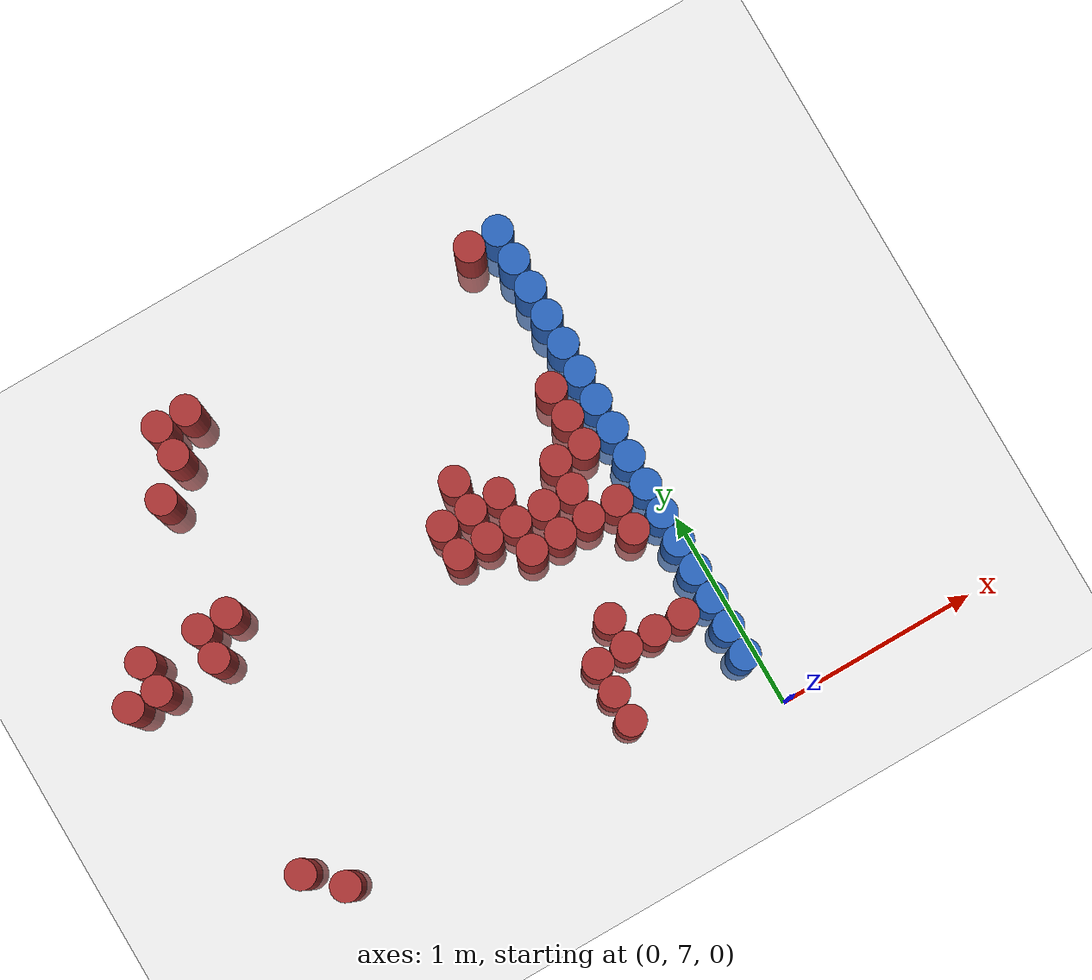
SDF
<sdf version="1.6">
 <world name="default">
  <model name="ground_plane">
   <static>1</static>
   <link name="link">
    <collision name="collision">
     <geometry><plane><normal>0 0 1</normal><size>100 100</size></plane></geometry>
     <surface><friction><ode><mu>100</mu><mu2>50</mu2></ode></friction></surface>
    </collision>
    <visual name="visual">
     <cast_shadows>0</cast_shadows>
     <geometry><plane><normal>0 0 1</normal><size>100 100</size></plane></geometry>
     <material>
      <script><uri>file://media/materials/scripts/gazebo.material</uri><name>Gazebo/Grey</name></script>
     </material>
    </visual>
   </link>
  </model>
  <model name="unit_cylinder_166">
   <static>1</static>
   <pose>-2.625000 8.475000 0.000000 0.000000 0.000000 0.000000</pose>
   <link name="link">
    <inertial>
     <mass>1</mass>
     <inertia><ixx>0.145833</ixx><ixy>0</ixy><ixz>0</ixz><iyy>0.145833</iyy><iyz>0</iyz><izz>0.125</izz></inertia>
    </inertial>
    <collision name="collision">
     <geometry><cylinder><radius>0.075000</radius><length>1</length></cylinder></geometry>
    </collision>
    <visual name="visual">
     <geometry><cylinder><radius>0.075000</radius><length>1</length></cylinder></geometry>
     <material>
      <ambient>0.648000 0.192000 0.192000 1</ambient>
      <diffuse>0.648000 0.192000 0.192000 1</diffuse>
     </material>
     <material>
      <script><name>Gazebo/Grey</name><uri>file://media/materials/scripts/gazebo.material</uri></script>
     </material>
    </visual>
   </link>
  </model>
  <model name="unit_cylinder_171">
   <static>1</static>
   <pose>-2.475000 8.475000 0.000000 0.000000 0.000000 0.000000</pose>
   <link name="link">
    <inertial>
     <mass>1</mass>
     <inertia><ixx>0.145833</ixx><ixy>0</ixy><ixz>0</ixz><iyy>0.145833</iyy><iyz>0</iyz><izz>0.125</izz></inertia>
    </inertial>
    <collision name="collision">
     <geometry><cylinder><radius>0.075000</radius><length>1</length></cylinder></geometry>
    </collision>
    <visual name="visual">
     <geometry><cylinder><radius>0.075000</radius><length>1</length></cylinder></geometry>
     <material>
      <ambient>0.648000 0.192000 0.192000 1</ambient>
      <diffuse>0.648000 0.192000 0.192000 1</diffuse>
     </material>
     <material>
      <script><name>Gazebo/Grey</name><uri>file://media/materials/scripts/gazebo.material</uri></script>
     </material>
    </visual>
   </link>
  </model>
  <model name="unit_cylinder_172">
   <static>1</static>
   <pose>-2.475000 8.625000 0.000000 0.000000 0.000000 0.000000</pose>
   <link name="link">
    <inertial>
     <mass>1</mass>
     <inertia><ixx>0.145833</ixx><ixy>0</ixy><ixz>0</ixz><iyy>0.145833</iyy><iyz>0</iyz><izz>0.125</izz></inertia>
    </inertial>
    <collision name="collision">
     <geometry><cylinder><radius>0.075000</radius><length>1</length></cylinder></geometry>
    </collision>
    <visual name="visual">
     <geometry><cylinder><radius>0.075000</radius><length>1</length></cylinder></geometry>
     <material>
      <ambient>0.648000 0.192000 0.192000 1</ambient>
      <diffuse>0.648000 0.192000 0.192000 1</diffuse>
     </material>
     <material>
      <script><name>Gazebo/Grey</name><uri>file://media/materials/scripts/gazebo.material</uri></script>
     </material>
    </visual>
   </link>
  </model>
  <model name="unit_cylinder_175">
   <static>1</static>
   <pose>-2.325000 7.425000 0.000000 0.000000 0.000000 0.000000</pose>
   <link name="link">
    <inertial>
     <mass>1</mass>
     <inertia><ixx>0.145833</ixx><ixy>0</ixy><ixz>0</ixz><iyy>0.145833</iyy><iyz>0</iyz><izz>0.125</izz></inertia>
    </inertial>
    <collision name="collision">
     <geometry><cylinder><radius>0.075000</radius><length>1</length></cylinder></geometry>
    </collision>
    <visual name="visual">
     <geometry><cylinder><radius>0.075000</radius><length>1</length></cylinder></geometry>
     <material>
      <ambient>0.648000 0.192000 0.192000 1</ambient>
      <diffuse>0.648000 0.192000 0.192000 1</diffuse>
     </material>
     <material>
      <script><name>Gazebo/Grey</name><uri>file://media/materials/scripts/gazebo.material</uri></script>
     </material>
    </visual>
   </link>
  </model>
  <model name="unit_cylinder_180">
   <static>1</static>
   <pose>-2.175000 7.275000 0.000000 0.000000 0.000000 0.000000</pose>
   <link name="link">
    <inertial>
     <mass>1</mass>
     <inertia><ixx>0.145833</ixx><ixy>0</ixy><ixz>0</ixz><iyy>0.145833</iyy><iyz>0</iyz><izz>0.125</izz></inertia>
    </inertial>
    <collision name="collision">
     <geometry><cylinder><radius>0.075000</radius><length>1</length></cylinder></geometry>
    </collision>
    <visual name="visual">
     <geometry><cylinder><radius>0.075000</radius><length>1</length></cylinder></geometry>
     <material>
      <ambient>0.648000 0.192000 0.192000 1</ambient>
      <diffuse>0.648000 0.192000 0.192000 1</diffuse>
     </material>
     <material>
      <script><name>Gazebo/Grey</name><uri>file://media/materials/scripts/gazebo.material</uri></script>
     </material>
    </visual>
   </link>
  </model>
  <model name="unit_cylinder_181">
   <static>1</static>
   <pose>-2.175000 8.475000 0.000000 0.000000 0.000000 0.000000</pose>
   <link name="link">
    <inertial>
     <mass>1</mass>
     <inertia><ixx>0.145833</ixx><ixy>0</ixy><ixz>0</ixz><iyy>0.145833</iyy><iyz>0</iyz><izz>0.125</izz></inertia>
    </inertial>
    <collision name="collision">
     <geometry><cylinder><radius>0.075000</radius><length>1</length></cylinder></geometry>
    </collision>
    <visual name="visual">
     <geometry><cylinder><radius>0.075000</radius><length>1</length></cylinder></geometry>
     <material>
      <ambient>0.648000 0.192000 0.192000 1</ambient>
      <diffuse>0.648000 0.192000 0.192000 1</diffuse>
     </material>
     <material>
      <script><name>Gazebo/Grey</name><uri>file://media/materials/scripts/gazebo.material</uri></script>
     </material>
    </visual>
   </link>
  </model>
  <model name="unit_cylinder_182">
   <static>1</static>
   <pose>-2.175000 8.625000 0.000000 0.000000 0.000000 0.000000</pose>
   <link name="link">
    <inertial>
     <mass>1</mass>
     <inertia><ixx>0.145833</ixx><ixy>0</ixy><ixz>0</ixz><iyy>0.145833</iyy><iyz>0</iyz><izz>0.125</izz></inertia>
    </inertial>
    <collision name="collision">
     <geometry><cylinder><radius>0.075000</radius><length>1</length></cylinder></geometry>
    </collision>
    <visual name="visual">
     <geometry><cylinder><radius>0.075000</radius><length>1</length></cylinder></geometry>
     <material>
      <ambient>0.648000 0.192000 0.192000 1</ambient>
      <diffuse>0.648000 0.192000 0.192000 1</diffuse>
     </material>
     <material>
      <script><name>Gazebo/Grey</name><uri>file://media/materials/scripts/gazebo.material</uri></script>
     </material>
    </visual>
   </link>
  </model>
  <model name="unit_cylinder_184">
   <static>1</static>
   <pose>-2.025000 8.625000 0.000000 0.000000 0.000000 0.000000</pose>
   <link name="link">
    <inertial>
     <mass>1</mass>
     <inertia><ixx>0.145833</ixx><ixy>0</ixy><ixz>0</ixz><iyy>0.145833</iyy><iyz>0</iyz><izz>0.125</izz></inertia>
    </inertial>
    <collision name="collision">
     <geometry><cylinder><radius>0.075000</radius><length>1</length></cylinder></geometry>
    </collision>
    <visual name="visual">
     <geometry><cylinder><radius>0.075000</radius><length>1</length></cylinder></geometry>
     <material>
      <ambient>0.648000 0.192000 0.192000 1</ambient>
      <diffuse>0.648000 0.192000 0.192000 1</diffuse>
     </material>
     <material>
      <script><name>Gazebo/Grey</name><uri>file://media/materials/scripts/gazebo.material</uri></script>
     </material>
    </visual>
   </link>
  </model>
  <model name="unit_cylinder_185">
   <static>1</static>
   <pose>-2.025000 9.225000 0.000000 0.000000 0.000000 0.000000</pose>
   <link name="link">
    <inertial>
     <mass>1</mass>
     <inertia><ixx>0.145833</ixx><ixy>0</ixy><ixz>0</ixz><iyy>0.145833</iyy><iyz>0</iyz><izz>0.125</izz></inertia>
    </inertial>
    <collision name="collision">
     <geometry><cylinder><radius>0.075000</radius><length>1</length></cylinder></geometry>
    </collision>
    <visual name="visual">
     <geometry><cylinder><radius>0.075000</radius><length>1</length></cylinder></geometry>
     <material>
      <ambient>0.648000 0.192000 0.192000 1</ambient>
      <diffuse>0.648000 0.192000 0.192000 1</diffuse>
     </material>
     <material>
      <script><name>Gazebo/Grey</name><uri>file://media/materials/scripts/gazebo.material</uri></script>
     </material>
    </visual>
   </link>
  </model>
  <model name="unit_cylinder_186">
   <static>1</static>
   <pose>-1.875000 9.375000 0.000000 0.000000 0.000000 0.000000</pose>
   <link name="link">
    <inertial>
     <mass>1</mass>
     <inertia><ixx>0.145833</ixx><ixy>0</ixy><ixz>0</ixz><iyy>0.145833</iyy><iyz>0</iyz><izz>0.125</izz></inertia>
    </inertial>
    <collision name="collision">
     <geometry><cylinder><radius>0.075000</radius><length>1</length></cylinder></geometry>
    </collision>
    <visual name="visual">
     <geometry><cylinder><radius>0.075000</radius><length>1</length></cylinder></geometry>
     <material>
      <ambient>0.648000 0.192000 0.192000 1</ambient>
      <diffuse>0.648000 0.192000 0.192000 1</diffuse>
     </material>
     <material>
      <script><name>Gazebo/Grey</name><uri>file://media/materials/scripts/gazebo.material</uri></script>
     </material>
    </visual>
   </link>
  </model>
  <model name="unit_cylinder_187">
   <static>1</static>
   <pose>-1.875000 9.525000 0.000000 0.000000 0.000000 0.000000</pose>
   <link name="link">
    <inertial>
     <mass>1</mass>
     <inertia><ixx>0.145833</ixx><ixy>0</ixy><ixz>0</ixz><iyy>0.145833</iyy><iyz>0</iyz><izz>0.125</izz></inertia>
    </inertial>
    <collision name="collision">
     <geometry><cylinder><radius>0.075000</radius><length>1</length></cylinder></geometry>
    </collision>
    <visual name="visual">
     <geometry><cylinder><radius>0.075000</radius><length>1</length></cylinder></geometry>
     <material>
      <ambient>0.648000 0.192000 0.192000 1</ambient>
      <diffuse>0.648000 0.192000 0.192000 1</diffuse>
     </material>
     <material>
      <script><name>Gazebo/Grey</name><uri>file://media/materials/scripts/gazebo.material</uri></script>
     </material>
    </visual>
   </link>
  </model>
  <model name="unit_cylinder_188">
   <static>1</static>
   <pose>-1.725000 9.525000 0.000000 0.000000 0.000000 0.000000</pose>
   <link name="link">
    <inertial>
     <mass>1</mass>
     <inertia><ixx>0.145833</ixx><ixy>0</ixy><ixz>0</ixz><iyy>0.145833</iyy><iyz>0</iyz><izz>0.125</izz></inertia>
    </inertial>
    <collision name="collision">
     <geometry><cylinder><radius>0.075000</radius><length>1</length></cylinder></geometry>
    </collision>
    <visual name="visual">
     <geometry><cylinder><radius>0.075000</radius><length>1</length></cylinder></geometry>
     <material>
      <ambient>0.648000 0.192000 0.192000 1</ambient>
      <diffuse>0.648000 0.192000 0.192000 1</diffuse>
     </material>
     <material>
      <script><name>Gazebo/Grey</name><uri>file://media/materials/scripts/gazebo.material</uri></script>
     </material>
    </visual>
   </link>
  </model>
  <model name="unit_cylinder_199">
   <static>1</static>
   <pose>-0.975000 8.325000 0.000000 0.000000 0.000000 0.000000</pose>
   <link name="link">
    <inertial>
     <mass>1</mass>
     <inertia><ixx>0.145833</ixx><ixy>0</ixy><ixz>0</ixz><iyy>0.145833</iyy><iyz>0</iyz><izz>0.125</izz></inertia>
    </inertial>
    <collision name="collision">
     <geometry><cylinder><radius>0.075000</radius><length>1</length></cylinder></geometry>
    </collision>
    <visual name="visual">
     <geometry><cylinder><radius>0.075000</radius><length>1</length></cylinder></geometry>
     <material>
      <ambient>0.648000 0.192000 0.192000 1</ambient>
      <diffuse>0.648000 0.192000 0.192000 1</diffuse>
     </material>
     <material>
      <script><name>Gazebo/Grey</name><uri>file://media/materials/scripts/gazebo.material</uri></script>
     </material>
    </visual>
   </link>
  </model>
  <model name="unit_cylinder_200">
   <static>1</static>
   <pose>-0.975000 8.475000 0.000000 0.000000 0.000000 0.000000</pose>
   <link name="link">
    <inertial>
     <mass>1</mass>
     <inertia><ixx>0.145833</ixx><ixy>0</ixy><ixz>0</ixz><iyy>0.145833</iyy><iyz>0</iyz><izz>0.125</izz></inertia>
    </inertial>
    <collision name="collision">
     <geometry><cylinder><radius>0.075000</radius><length>1</length></cylinder></geometry>
    </collision>
    <visual name="visual">
     <geometry><cylinder><radius>0.075000</radius><length>1</length></cylinder></geometry>
     <material>
      <ambient>0.648000 0.192000 0.192000 1</ambient>
      <diffuse>0.648000 0.192000 0.192000 1</diffuse>
     </material>
     <material>
      <script><name>Gazebo/Grey</name><uri>file://media/materials/scripts/gazebo.material</uri></script>
     </material>
    </visual>
   </link>
  </model>
  <model name="unit_cylinder_203">
   <static>1</static>
   <pose>-0.825000 8.325000 0.000000 0.000000 0.000000 0.000000</pose>
   <link name="link">
    <inertial>
     <mass>1</mass>
     <inertia><ixx>0.145833</ixx><ixy>0</ixy><ixz>0</ixz><iyy>0.145833</iyy><iyz>0</iyz><izz>0.125</izz></inertia>
    </inertial>
    <collision name="collision">
     <geometry><cylinder><radius>0.075000</radius><length>1</length></cylinder></geometry>
    </collision>
    <visual name="visual">
     <geometry><cylinder><radius>0.075000</radius><length>1</length></cylinder></geometry>
     <material>
      <ambient>0.648000 0.192000 0.192000 1</ambient>
      <diffuse>0.648000 0.192000 0.192000 1</diffuse>
     </material>
     <material>
      <script><name>Gazebo/Grey</name><uri>file://media/materials/scripts/gazebo.material</uri></script>
     </material>
    </visual>
   </link>
  </model>
  <model name="unit_cylinder_204">
   <static>1</static>
   <pose>-0.825000 8.475000 0.000000 0.000000 0.000000 0.000000</pose>
   <link name="link">
    <inertial>
     <mass>1</mass>
     <inertia><ixx>0.145833</ixx><ixy>0</ixy><ixz>0</ixz><iyy>0.145833</iyy><iyz>0</iyz><izz>0.125</izz></inertia>
    </inertial>
    <collision name="collision">
     <geometry><cylinder><radius>0.075000</radius><length>1</length></cylinder></geometry>
    </collision>
    <visual name="visual">
     <geometry><cylinder><radius>0.075000</radius><length>1</length></cylinder></geometry>
     <material>
      <ambient>0.648000 0.192000 0.192000 1</ambient>
      <diffuse>0.648000 0.192000 0.192000 1</diffuse>
     </material>
     <material>
      <script><name>Gazebo/Grey</name><uri>file://media/materials/scripts/gazebo.material</uri></script>
     </material>
    </visual>
   </link>
  </model>
  <model name="unit_cylinder_205">
   <static>1</static>
   <pose>-0.825000 8.625000 0.000000 0.000000 0.000000 0.000000</pose>
   <link name="link">
    <inertial>
     <mass>1</mass>
     <inertia><ixx>0.145833</ixx><ixy>0</ixy><ixz>0</ixz><iyy>0.145833</iyy><iyz>0</iyz><izz>0.125</izz></inertia>
    </inertial>
    <collision name="collision">
     <geometry><cylinder><radius>0.075000</radius><length>1</length></cylinder></geometry>
    </collision>
    <visual name="visual">
     <geometry><cylinder><radius>0.075000</radius><length>1</length></cylinder></geometry>
     <material>
      <ambient>0.648000 0.192000 0.192000 1</ambient>
      <diffuse>0.648000 0.192000 0.192000 1</diffuse>
     </material>
     <material>
      <script><name>Gazebo/Grey</name><uri>file://media/materials/scripts/gazebo.material</uri></script>
     </material>
    </visual>
   </link>
  </model>
  <model name="unit_cylinder_207">
   <static>1</static>
   <pose>-0.675000 7.275000 0.000000 0.000000 0.000000 0.000000</pose>
   <link name="link">
    <inertial>
     <mass>1</mass>
     <inertia><ixx>0.145833</ixx><ixy>0</ixy><ixz>0</ixz><iyy>0.145833</iyy><iyz>0</iyz><izz>0.125</izz></inertia>
    </inertial>
    <collision name="collision">
     <geometry><cylinder><radius>0.075000</radius><length>1</length></cylinder></geometry>
    </collision>
    <visual name="visual">
     <geometry><cylinder><radius>0.075000</radius><length>1</length></cylinder></geometry>
     <material>
      <ambient>0.648000 0.192000 0.192000 1</ambient>
      <diffuse>0.648000 0.192000 0.192000 1</diffuse>
     </material>
     <material>
      <script><name>Gazebo/Grey</name><uri>file://media/materials/scripts/gazebo.material</uri></script>
     </material>
    </visual>
   </link>
  </model>
  <model name="unit_cylinder_208">
   <static>1</static>
   <pose>-0.675000 7.425000 0.000000 0.000000 0.000000 0.000000</pose>
   <link name="link">
    <inertial>
     <mass>1</mass>
     <inertia><ixx>0.145833</ixx><ixy>0</ixy><ixz>0</ixz><iyy>0.145833</iyy><iyz>0</iyz><izz>0.125</izz></inertia>
    </inertial>
    <collision name="collision">
     <geometry><cylinder><radius>0.075000</radius><length>1</length></cylinder></geometry>
    </collision>
    <visual name="visual">
     <geometry><cylinder><radius>0.075000</radius><length>1</length></cylinder></geometry>
     <material>
      <ambient>0.648000 0.192000 0.192000 1</ambient>
      <diffuse>0.648000 0.192000 0.192000 1</diffuse>
     </material>
     <material>
      <script><name>Gazebo/Grey</name><uri>file://media/materials/scripts/gazebo.material</uri></script>
     </material>
    </visual>
   </link>
  </model>
  <model name="unit_cylinder_209">
   <static>1</static>
   <pose>-0.675000 7.575000 0.000000 0.000000 0.000000 0.000000</pose>
   <link name="link">
    <inertial>
     <mass>1</mass>
     <inertia><ixx>0.145833</ixx><ixy>0</ixy><ixz>0</ixz><iyy>0.145833</iyy><iyz>0</iyz><izz>0.125</izz></inertia>
    </inertial>
    <collision name="collision">
     <geometry><cylinder><radius>0.075000</radius><length>1</length></cylinder></geometry>
    </collision>
    <visual name="visual">
     <geometry><cylinder><radius>0.075000</radius><length>1</length></cylinder></geometry>
     <material>
      <ambient>0.648000 0.192000 0.192000 1</ambient>
      <diffuse>0.648000 0.192000 0.192000 1</diffuse>
     </material>
     <material>
      <script><name>Gazebo/Grey</name><uri>file://media/materials/scripts/gazebo.material</uri></script>
     </material>
    </visual>
   </link>
  </model>
  <model name="unit_cylinder_210">
   <static>1</static>
   <pose>-0.675000 8.175000 0.000000 0.000000 0.000000 0.000000</pose>
   <link name="link">
    <inertial>
     <mass>1</mass>
     <inertia><ixx>0.145833</ixx><ixy>0</ixy><ixz>0</ixz><iyy>0.145833</iyy><iyz>0</iyz><izz>0.125</izz></inertia>
    </inertial>
    <collision name="collision">
     <geometry><cylinder><radius>0.075000</radius><length>1</length></cylinder></geometry>
    </collision>
    <visual name="visual">
     <geometry><cylinder><radius>0.075000</radius><length>1</length></cylinder></geometry>
     <material>
      <ambient>0.648000 0.192000 0.192000 1</ambient>
      <diffuse>0.648000 0.192000 0.192000 1</diffuse>
     </material>
     <material>
      <script><name>Gazebo/Grey</name><uri>file://media/materials/scripts/gazebo.material</uri></script>
     </material>
    </visual>
   </link>
  </model>
  <model name="unit_cylinder_211">
   <static>1</static>
   <pose>-0.675000 8.325000 0.000000 0.000000 0.000000 0.000000</pose>
   <link name="link">
    <inertial>
     <mass>1</mass>
     <inertia><ixx>0.145833</ixx><ixy>0</ixy><ixz>0</ixz><iyy>0.145833</iyy><iyz>0</iyz><izz>0.125</izz></inertia>
    </inertial>
    <collision name="collision">
     <geometry><cylinder><radius>0.075000</radius><length>1</length></cylinder></geometry>
    </collision>
    <visual name="visual">
     <geometry><cylinder><radius>0.075000</radius><length>1</length></cylinder></geometry>
     <material>
      <ambient>0.648000 0.192000 0.192000 1</ambient>
      <diffuse>0.648000 0.192000 0.192000 1</diffuse>
     </material>
     <material>
      <script><name>Gazebo/Grey</name><uri>file://media/materials/scripts/gazebo.material</uri></script>
     </material>
    </visual>
   </link>
  </model>
  <model name="unit_cylinder_212">
   <static>1</static>
   <pose>-0.675000 8.475000 0.000000 0.000000 0.000000 0.000000</pose>
   <link name="link">
    <inertial>
     <mass>1</mass>
     <inertia><ixx>0.145833</ixx><ixy>0</ixy><ixz>0</ixz><iyy>0.145833</iyy><iyz>0</iyz><izz>0.125</izz></inertia>
    </inertial>
    <collision name="collision">
     <geometry><cylinder><radius>0.075000</radius><length>1</length></cylinder></geometry>
    </collision>
    <visual name="visual">
     <geometry><cylinder><radius>0.075000</radius><length>1</length></cylinder></geometry>
     <material>
      <ambient>0.648000 0.192000 0.192000 1</ambient>
      <diffuse>0.648000 0.192000 0.192000 1</diffuse>
     </material>
     <material>
      <script><name>Gazebo/Grey</name><uri>file://media/materials/scripts/gazebo.material</uri></script>
     </material>
    </visual>
   </link>
  </model>
  <model name="unit_cylinder_215">
   <static>1</static>
   <pose>-0.525000 7.575000 0.000000 0.000000 0.000000 0.000000</pose>
   <link name="link">
    <inertial>
     <mass>1</mass>
     <inertia><ixx>0.145833</ixx><ixy>0</ixy><ixz>0</ixz><iyy>0.145833</iyy><iyz>0</iyz><izz>0.125</izz></inertia>
    </inertial>
    <collision name="collision">
     <geometry><cylinder><radius>0.075000</radius><length>1</length></cylinder></geometry>
    </collision>
    <visual name="visual">
     <geometry><cylinder><radius>0.075000</radius><length>1</length></cylinder></geometry>
     <material>
      <ambient>0.648000 0.192000 0.192000 1</ambient>
      <diffuse>0.648000 0.192000 0.192000 1</diffuse>
     </material>
     <material>
      <script><name>Gazebo/Grey</name><uri>file://media/materials/scripts/gazebo.material</uri></script>
     </material>
    </visual>
   </link>
  </model>
  <model name="unit_cylinder_216">
   <static>1</static>
   <pose>-0.525000 7.725000 0.000000 0.000000 0.000000 0.000000</pose>
   <link name="link">
    <inertial>
     <mass>1</mass>
     <inertia><ixx>0.145833</ixx><ixy>0</ixy><ixz>0</ixz><iyy>0.145833</iyy><iyz>0</iyz><izz>0.125</izz></inertia>
    </inertial>
    <collision name="collision">
     <geometry><cylinder><radius>0.075000</radius><length>1</length></cylinder></geometry>
    </collision>
    <visual name="visual">
     <geometry><cylinder><radius>0.075000</radius><length>1</length></cylinder></geometry>
     <material>
      <ambient>0.648000 0.192000 0.192000 1</ambient>
      <diffuse>0.648000 0.192000 0.192000 1</diffuse>
     </material>
     <material>
      <script><name>Gazebo/Grey</name><uri>file://media/materials/scripts/gazebo.material</uri></script>
     </material>
    </visual>
   </link>
  </model>
  <model name="unit_cylinder_217">
   <static>1</static>
   <pose>-0.525000 8.175000 0.000000 0.000000 0.000000 0.000000</pose>
   <link name="link">
    <inertial>
     <mass>1</mass>
     <inertia><ixx>0.145833</ixx><ixy>0</ixy><ixz>0</ixz><iyy>0.145833</iyy><iyz>0</iyz><izz>0.125</izz></inertia>
    </inertial>
    <collision name="collision">
     <geometry><cylinder><radius>0.075000</radius><length>1</length></cylinder></geometry>
    </collision>
    <visual name="visual">
     <geometry><cylinder><radius>0.075000</radius><length>1</length></cylinder></geometry>
     <material>
      <ambient>0.648000 0.192000 0.192000 1</ambient>
      <diffuse>0.648000 0.192000 0.192000 1</diffuse>
     </material>
     <material>
      <script><name>Gazebo/Grey</name><uri>file://media/materials/scripts/gazebo.material</uri></script>
     </material>
    </visual>
   </link>
  </model>
  <model name="unit_cylinder_218">
   <static>1</static>
   <pose>-0.525000 8.325000 0.000000 0.000000 0.000000 0.000000</pose>
   <link name="link">
    <inertial>
     <mass>1</mass>
     <inertia><ixx>0.145833</ixx><ixy>0</ixy><ixz>0</ixz><iyy>0.145833</iyy><iyz>0</iyz><izz>0.125</izz></inertia>
    </inertial>
    <collision name="collision">
     <geometry><cylinder><radius>0.075000</radius><length>1</length></cylinder></geometry>
    </collision>
    <visual name="visual">
     <geometry><cylinder><radius>0.075000</radius><length>1</length></cylinder></geometry>
     <material>
      <ambient>0.648000 0.192000 0.192000 1</ambient>
      <diffuse>0.648000 0.192000 0.192000 1</diffuse>
     </material>
     <material>
      <script><name>Gazebo/Grey</name><uri>file://media/materials/scripts/gazebo.material</uri></script>
     </material>
    </visual>
   </link>
  </model>
  <model name="unit_cylinder_222">
   <static>1</static>
   <pose>-0.375000 7.575000 0.000000 0.000000 0.000000 0.000000</pose>
   <link name="link">
    <inertial>
     <mass>1</mass>
     <inertia><ixx>0.145833</ixx><ixy>0</ixy><ixz>0</ixz><iyy>0.145833</iyy><iyz>0</iyz><izz>0.125</izz></inertia>
    </inertial>
    <collision name="collision">
     <geometry><cylinder><radius>0.075000</radius><length>1</length></cylinder></geometry>
    </collision>
    <visual name="visual">
     <geometry><cylinder><radius>0.075000</radius><length>1</length></cylinder></geometry>
     <material>
      <ambient>0.648000 0.192000 0.192000 1</ambient>
      <diffuse>0.648000 0.192000 0.192000 1</diffuse>
     </material>
     <material>
      <script><name>Gazebo/Grey</name><uri>file://media/materials/scripts/gazebo.material</uri></script>
     </material>
    </visual>
   </link>
  </model>
  <model name="unit_cylinder_223">
   <static>1</static>
   <pose>-0.375000 8.175000 0.000000 0.000000 0.000000 0.000000</pose>
   <link name="link">
    <inertial>
     <mass>1</mass>
     <inertia><ixx>0.145833</ixx><ixy>0</ixy><ixz>0</ixz><iyy>0.145833</iyy><iyz>0</iyz><izz>0.125</izz></inertia>
    </inertial>
    <collision name="collision">
     <geometry><cylinder><radius>0.075000</radius><length>1</length></cylinder></geometry>
    </collision>
    <visual name="visual">
     <geometry><cylinder><radius>0.075000</radius><length>1</length></cylinder></geometry>
     <material>
      <ambient>0.648000 0.192000 0.192000 1</ambient>
      <diffuse>0.648000 0.192000 0.192000 1</diffuse>
     </material>
     <material>
      <script><name>Gazebo/Grey</name><uri>file://media/materials/scripts/gazebo.material</uri></script>
     </material>
    </visual>
   </link>
  </model>
  <model name="unit_cylinder_224">
   <static>1</static>
   <pose>-0.375000 8.325000 0.000000 0.000000 0.000000 0.000000</pose>
   <link name="link">
    <inertial>
     <mass>1</mass>
     <inertia><ixx>0.145833</ixx><ixy>0</ixy><ixz>0</ixz><iyy>0.145833</iyy><iyz>0</iyz><izz>0.125</izz></inertia>
    </inertial>
    <collision name="collision">
     <geometry><cylinder><radius>0.075000</radius><length>1</length></cylinder></geometry>
    </collision>
    <visual name="visual">
     <geometry><cylinder><radius>0.075000</radius><length>1</length></cylinder></geometry>
     <material>
      <ambient>0.648000 0.192000 0.192000 1</ambient>
      <diffuse>0.648000 0.192000 0.192000 1</diffuse>
     </material>
     <material>
      <script><name>Gazebo/Grey</name><uri>file://media/materials/scripts/gazebo.material</uri></script>
     </material>
    </visual>
   </link>
  </model>
  <model name="unit_cylinder_225">
   <static>1</static>
   <pose>-0.375000 8.475000 0.000000 0.000000 0.000000 0.000000</pose>
   <link name="link">
    <inertial>
     <mass>1</mass>
     <inertia><ixx>0.145833</ixx><ixy>0</ixy><ixz>0</ixz><iyy>0.145833</iyy><iyz>0</iyz><izz>0.125</izz></inertia>
    </inertial>
    <collision name="collision">
     <geometry><cylinder><radius>0.075000</radius><length>1</length></cylinder></geometry>
    </collision>
    <visual name="visual">
     <geometry><cylinder><radius>0.075000</radius><length>1</length></cylinder></geometry>
     <material>
      <ambient>0.648000 0.192000 0.192000 1</ambient>
      <diffuse>0.648000 0.192000 0.192000 1</diffuse>
     </material>
     <material>
      <script><name>Gazebo/Grey</name><uri>file://media/materials/scripts/gazebo.material</uri></script>
     </material>
    </visual>
   </link>
  </model>
  <model name="unit_cylinder_232">
   <static>1</static>
   <pose>-0.225000 7.575000 0.000000 0.000000 0.000000 0.000000</pose>
   <link name="link">
    <inertial>
     <mass>1</mass>
     <inertia><ixx>0.145833</ixx><ixy>0</ixy><ixz>0</ixz><iyy>0.145833</iyy><iyz>0</iyz><izz>0.125</izz></inertia>
    </inertial>
    <collision name="collision">
     <geometry><cylinder><radius>0.075000</radius><length>1</length></cylinder></geometry>
    </collision>
    <visual name="visual">
     <geometry><cylinder><radius>0.075000</radius><length>1</length></cylinder></geometry>
     <material>
      <ambient>0.648000 0.192000 0.192000 1</ambient>
      <diffuse>0.648000 0.192000 0.192000 1</diffuse>
     </material>
     <material>
      <script><name>Gazebo/Grey</name><uri>file://media/materials/scripts/gazebo.material</uri></script>
     </material>
    </visual>
   </link>
  </model>
  <model name="unit_cylinder_233">
   <static>1</static>
   <pose>-0.225000 8.025000 0.000000 0.000000 0.000000 0.000000</pose>
   <link name="link">
    <inertial>
     <mass>1</mass>
     <inertia><ixx>0.145833</ixx><ixy>0</ixy><ixz>0</ixz><iyy>0.145833</iyy><iyz>0</iyz><izz>0.125</izz></inertia>
    </inertial>
    <collision name="collision">
     <geometry><cylinder><radius>0.075000</radius><length>1</length></cylinder></geometry>
    </collision>
    <visual name="visual">
     <geometry><cylinder><radius>0.075000</radius><length>1</length></cylinder></geometry>
     <material>
      <ambient>0.648000 0.192000 0.192000 1</ambient>
      <diffuse>0.648000 0.192000 0.192000 1</diffuse>
     </material>
     <material>
      <script><name>Gazebo/Grey</name><uri>file://media/materials/scripts/gazebo.material</uri></script>
     </material>
    </visual>
   </link>
  </model>
  <model name="unit_cylinder_234">
   <static>1</static>
   <pose>-0.225000 8.175000 0.000000 0.000000 0.000000 0.000000</pose>
   <link name="link">
    <inertial>
     <mass>1</mass>
     <inertia><ixx>0.145833</ixx><ixy>0</ixy><ixz>0</ixz><iyy>0.145833</iyy><iyz>0</iyz><izz>0.125</izz></inertia>
    </inertial>
    <collision name="collision">
     <geometry><cylinder><radius>0.075000</radius><length>1</length></cylinder></geometry>
    </collision>
    <visual name="visual">
     <geometry><cylinder><radius>0.075000</radius><length>1</length></cylinder></geometry>
     <material>
      <ambient>0.648000 0.192000 0.192000 1</ambient>
      <diffuse>0.648000 0.192000 0.192000 1</diffuse>
     </material>
     <material>
      <script><name>Gazebo/Grey</name><uri>file://media/materials/scripts/gazebo.material</uri></script>
     </material>
    </visual>
   </link>
  </model>
  <model name="unit_cylinder_235">
   <static>1</static>
   <pose>-0.225000 8.475000 0.000000 0.000000 0.000000 0.000000</pose>
   <link name="link">
    <inertial>
     <mass>1</mass>
     <inertia><ixx>0.145833</ixx><ixy>0</ixy><ixz>0</ixz><iyy>0.145833</iyy><iyz>0</iyz><izz>0.125</izz></inertia>
    </inertial>
    <collision name="collision">
     <geometry><cylinder><radius>0.075000</radius><length>1</length></cylinder></geometry>
    </collision>
    <visual name="visual">
     <geometry><cylinder><radius>0.075000</radius><length>1</length></cylinder></geometry>
     <material>
      <ambient>0.648000 0.192000 0.192000 1</ambient>
      <diffuse>0.648000 0.192000 0.192000 1</diffuse>
     </material>
     <material>
      <script><name>Gazebo/Grey</name><uri>file://media/materials/scripts/gazebo.material</uri></script>
     </material>
    </visual>
   </link>
  </model>
  <model name="unit_cylinder_236">
   <static>1</static>
   <pose>-0.225000 8.625000 0.000000 0.000000 0.000000 0.000000</pose>
   <link name="link">
    <inertial>
     <mass>1</mass>
     <inertia><ixx>0.145833</ixx><ixy>0</ixy><ixz>0</ixz><iyy>0.145833</iyy><iyz>0</iyz><izz>0.125</izz></inertia>
    </inertial>
    <collision name="collision">
     <geometry><cylinder><radius>0.075000</radius><length>1</length></cylinder></geometry>
    </collision>
    <visual name="visual">
     <geometry><cylinder><radius>0.075000</radius><length>1</length></cylinder></geometry>
     <material>
      <ambient>0.648000 0.192000 0.192000 1</ambient>
      <diffuse>0.648000 0.192000 0.192000 1</diffuse>
     </material>
     <material>
      <script><name>Gazebo/Grey</name><uri>file://media/materials/scripts/gazebo.material</uri></script>
     </material>
    </visual>
   </link>
  </model>
  <model name="unit_cylinder_237">
   <static>1</static>
   <pose>-0.225000 8.775000 0.000000 0.000000 0.000000 0.000000</pose>
   <link name="link">
    <inertial>
     <mass>1</mass>
     <inertia><ixx>0.145833</ixx><ixy>0</ixy><ixz>0</ixz><iyy>0.145833</iyy><iyz>0</iyz><izz>0.125</izz></inertia>
    </inertial>
    <collision name="collision">
     <geometry><cylinder><radius>0.075000</radius><length>1</length></cylinder></geometry>
    </collision>
    <visual name="visual">
     <geometry><cylinder><radius>0.075000</radius><length>1</length></cylinder></geometry>
     <material>
      <ambient>0.648000 0.192000 0.192000 1</ambient>
      <diffuse>0.648000 0.192000 0.192000 1</diffuse>
     </material>
     <material>
      <script><name>Gazebo/Grey</name><uri>file://media/materials/scripts/gazebo.material</uri></script>
     </material>
    </visual>
   </link>
  </model>
  <model name="unit_cylinder_238">
   <static>1</static>
   <pose>-0.225000 9.525000 0.000000 0.000000 0.000000 0.000000</pose>
   <link name="link">
    <inertial>
     <mass>1</mass>
     <inertia><ixx>0.145833</ixx><ixy>0</ixy><ixz>0</ixz><iyy>0.145833</iyy><iyz>0</iyz><izz>0.125</izz></inertia>
    </inertial>
    <collision name="collision">
     <geometry><cylinder><radius>0.075000</radius><length>1</length></cylinder></geometry>
    </collision>
    <visual name="visual">
     <geometry><cylinder><radius>0.075000</radius><length>1</length></cylinder></geometry>
     <material>
      <ambient>0.648000 0.192000 0.192000 1</ambient>
      <diffuse>0.648000 0.192000 0.192000 1</diffuse>
     </material>
     <material>
      <script><name>Gazebo/Grey</name><uri>file://media/materials/scripts/gazebo.material</uri></script>
     </material>
    </visual>
   </link>
  </model>
  <model name="unit_cylinder_253">
   <static>1</static>
   <pose>-0.075000 7.275000 0.000000 0.000000 0.000000 0.000000</pose>
   <link name="link">
    <inertial>
     <mass>1</mass>
     <inertia><ixx>0.145833</ixx><ixy>0</ixy><ixz>0</ixz><iyy>0.145833</iyy><iyz>0</iyz><izz>0.125</izz></inertia>
    </inertial>
    <collision name="collision">
     <geometry><cylinder><radius>0.075000</radius><length>1</length></cylinder></geometry>
    </collision>
    <visual name="visual">
     <geometry><cylinder><radius>0.075000</radius><length>1</length></cylinder></geometry>
     <material>
      <ambient>0.152000 0.379000 0.720000 1</ambient>
      <diffuse>0.152000 0.379000 0.720000 1</diffuse>
     </material>
     <material>
      <script><name>Gazebo/Grey</name><uri>file://media/materials/scripts/gazebo.material</uri></script>
     </material>
    </visual>
   </link>
  </model>
  <model name="unit_cylinder_254">
   <static>1</static>
   <pose>-0.075000 7.425000 0.000000 0.000000 0.000000 0.000000</pose>
   <link name="link">
    <inertial>
     <mass>1</mass>
     <inertia><ixx>0.145833</ixx><ixy>0</ixy><ixz>0</ixz><iyy>0.145833</iyy><iyz>0</iyz><izz>0.125</izz></inertia>
    </inertial>
    <collision name="collision">
     <geometry><cylinder><radius>0.075000</radius><length>1</length></cylinder></geometry>
    </collision>
    <visual name="visual">
     <geometry><cylinder><radius>0.075000</radius><length>1</length></cylinder></geometry>
     <material>
      <ambient>0.152000 0.379000 0.720000 1</ambient>
      <diffuse>0.152000 0.379000 0.720000 1</diffuse>
     </material>
     <material>
      <script><name>Gazebo/Grey</name><uri>file://media/materials/scripts/gazebo.material</uri></script>
     </material>
    </visual>
   </link>
  </model>
  <model name="unit_cylinder_255">
   <static>1</static>
   <pose>-0.075000 7.575000 0.000000 0.000000 0.000000 0.000000</pose>
   <link name="link">
    <inertial>
     <mass>1</mass>
     <inertia><ixx>0.145833</ixx><ixy>0</ixy><ixz>0</ixz><iyy>0.145833</iyy><iyz>0</iyz><izz>0.125</izz></inertia>
    </inertial>
    <collision name="collision">
     <geometry><cylinder><radius>0.075000</radius><length>1</length></cylinder></geometry>
    </collision>
    <visual name="visual">
     <geometry><cylinder><radius>0.075000</radius><length>1</length></cylinder></geometry>
     <material>
      <ambient>0.152000 0.379000 0.720000 1</ambient>
      <diffuse>0.152000 0.379000 0.720000 1</diffuse>
     </material>
     <material>
      <script><name>Gazebo/Grey</name><uri>file://media/materials/scripts/gazebo.material</uri></script>
     </material>
    </visual>
   </link>
  </model>
  <model name="unit_cylinder_256">
   <static>1</static>
   <pose>-0.075000 7.725000 0.000000 0.000000 0.000000 0.000000</pose>
   <link name="link">
    <inertial>
     <mass>1</mass>
     <inertia><ixx>0.145833</ixx><ixy>0</ixy><ixz>0</ixz><iyy>0.145833</iyy><iyz>0</iyz><izz>0.125</izz></inertia>
    </inertial>
    <collision name="collision">
     <geometry><cylinder><radius>0.075000</radius><length>1</length></cylinder></geometry>
    </collision>
    <visual name="visual">
     <geometry><cylinder><radius>0.075000</radius><length>1</length></cylinder></geometry>
     <material>
      <ambient>0.152000 0.379000 0.720000 1</ambient>
      <diffuse>0.152000 0.379000 0.720000 1</diffuse>
     </material>
     <material>
      <script><name>Gazebo/Grey</name><uri>file://media/materials/scripts/gazebo.material</uri></script>
     </material>
    </visual>
   </link>
  </model>
  <model name="unit_cylinder_257">
   <static>1</static>
   <pose>-0.075000 7.875000 0.000000 0.000000 0.000000 0.000000</pose>
   <link name="link">
    <inertial>
     <mass>1</mass>
     <inertia><ixx>0.145833</ixx><ixy>0</ixy><ixz>0</ixz><iyy>0.145833</iyy><iyz>0</iyz><izz>0.125</izz></inertia>
    </inertial>
    <collision name="collision">
     <geometry><cylinder><radius>0.075000</radius><length>1</length></cylinder></geometry>
    </collision>
    <visual name="visual">
     <geometry><cylinder><radius>0.075000</radius><length>1</length></cylinder></geometry>
     <material>
      <ambient>0.152000 0.379000 0.720000 1</ambient>
      <diffuse>0.152000 0.379000 0.720000 1</diffuse>
     </material>
     <material>
      <script><name>Gazebo/Grey</name><uri>file://media/materials/scripts/gazebo.material</uri></script>
     </material>
    </visual>
   </link>
  </model>
  <model name="unit_cylinder_258">
   <static>1</static>
   <pose>-0.075000 8.025000 0.000000 0.000000 0.000000 0.000000</pose>
   <link name="link">
    <inertial>
     <mass>1</mass>
     <inertia><ixx>0.145833</ixx><ixy>0</ixy><ixz>0</ixz><iyy>0.145833</iyy><iyz>0</iyz><izz>0.125</izz></inertia>
    </inertial>
    <collision name="collision">
     <geometry><cylinder><radius>0.075000</radius><length>1</length></cylinder></geometry>
    </collision>
    <visual name="visual">
     <geometry><cylinder><radius>0.075000</radius><length>1</length></cylinder></geometry>
     <material>
      <ambient>0.152000 0.379000 0.720000 1</ambient>
      <diffuse>0.152000 0.379000 0.720000 1</diffuse>
     </material>
     <material>
      <script><name>Gazebo/Grey</name><uri>file://media/materials/scripts/gazebo.material</uri></script>
     </material>
    </visual>
   </link>
  </model>
  <model name="unit_cylinder_259">
   <static>1</static>
   <pose>-0.075000 8.175000 0.000000 0.000000 0.000000 0.000000</pose>
   <link name="link">
    <inertial>
     <mass>1</mass>
     <inertia><ixx>0.145833</ixx><ixy>0</ixy><ixz>0</ixz><iyy>0.145833</iyy><iyz>0</iyz><izz>0.125</izz></inertia>
    </inertial>
    <collision name="collision">
     <geometry><cylinder><radius>0.075000</radius><length>1</length></cylinder></geometry>
    </collision>
    <visual name="visual">
     <geometry><cylinder><radius>0.075000</radius><length>1</length></cylinder></geometry>
     <material>
      <ambient>0.152000 0.379000 0.720000 1</ambient>
      <diffuse>0.152000 0.379000 0.720000 1</diffuse>
     </material>
     <material>
      <script><name>Gazebo/Grey</name><uri>file://media/materials/scripts/gazebo.material</uri></script>
     </material>
    </visual>
   </link>
  </model>
  <model name="unit_cylinder_260">
   <static>1</static>
   <pose>-0.075000 8.325000 0.000000 0.000000 0.000000 0.000000</pose>
   <link name="link">
    <inertial>
     <mass>1</mass>
     <inertia><ixx>0.145833</ixx><ixy>0</ixy><ixz>0</ixz><iyy>0.145833</iyy><iyz>0</iyz><izz>0.125</izz></inertia>
    </inertial>
    <collision name="collision">
     <geometry><cylinder><radius>0.075000</radius><length>1</length></cylinder></geometry>
    </collision>
    <visual name="visual">
     <geometry><cylinder><radius>0.075000</radius><length>1</length></cylinder></geometry>
     <material>
      <ambient>0.152000 0.379000 0.720000 1</ambient>
      <diffuse>0.152000 0.379000 0.720000 1</diffuse>
     </material>
     <material>
      <script><name>Gazebo/Grey</name><uri>file://media/materials/scripts/gazebo.material</uri></script>
     </material>
    </visual>
   </link>
  </model>
  <model name="unit_cylinder_261">
   <static>1</static>
   <pose>-0.075000 8.475000 0.000000 0.000000 0.000000 0.000000</pose>
   <link name="link">
    <inertial>
     <mass>1</mass>
     <inertia><ixx>0.145833</ixx><ixy>0</ixy><ixz>0</ixz><iyy>0.145833</iyy><iyz>0</iyz><izz>0.125</izz></inertia>
    </inertial>
    <collision name="collision">
     <geometry><cylinder><radius>0.075000</radius><length>1</length></cylinder></geometry>
    </collision>
    <visual name="visual">
     <geometry><cylinder><radius>0.075000</radius><length>1</length></cylinder></geometry>
     <material>
      <ambient>0.152000 0.379000 0.720000 1</ambient>
      <diffuse>0.152000 0.379000 0.720000 1</diffuse>
     </material>
     <material>
      <script><name>Gazebo/Grey</name><uri>file://media/materials/scripts/gazebo.material</uri></script>
     </material>
    </visual>
   </link>
  </model>
  <model name="unit_cylinder_262">
   <static>1</static>
   <pose>-0.075000 8.625000 0.000000 0.000000 0.000000 0.000000</pose>
   <link name="link">
    <inertial>
     <mass>1</mass>
     <inertia><ixx>0.145833</ixx><ixy>0</ixy><ixz>0</ixz><iyy>0.145833</iyy><iyz>0</iyz><izz>0.125</izz></inertia>
    </inertial>
    <collision name="collision">
     <geometry><cylinder><radius>0.075000</radius><length>1</length></cylinder></geometry>
    </collision>
    <visual name="visual">
     <geometry><cylinder><radius>0.075000</radius><length>1</length></cylinder></geometry>
     <material>
      <ambient>0.152000 0.379000 0.720000 1</ambient>
      <diffuse>0.152000 0.379000 0.720000 1</diffuse>
     </material>
     <material>
      <script><name>Gazebo/Grey</name><uri>file://media/materials/scripts/gazebo.material</uri></script>
     </material>
    </visual>
   </link>
  </model>
  <model name="unit_cylinder_263">
   <static>1</static>
   <pose>-0.075000 8.775000 0.000000 0.000000 0.000000 0.000000</pose>
   <link name="link">
    <inertial>
     <mass>1</mass>
     <inertia><ixx>0.145833</ixx><ixy>0</ixy><ixz>0</ixz><iyy>0.145833</iyy><iyz>0</iyz><izz>0.125</izz></inertia>
    </inertial>
    <collision name="collision">
     <geometry><cylinder><radius>0.075000</radius><length>1</length></cylinder></geometry>
    </collision>
    <visual name="visual">
     <geometry><cylinder><radius>0.075000</radius><length>1</length></cylinder></geometry>
     <material>
      <ambient>0.152000 0.379000 0.720000 1</ambient>
      <diffuse>0.152000 0.379000 0.720000 1</diffuse>
     </material>
     <material>
      <script><name>Gazebo/Grey</name><uri>file://media/materials/scripts/gazebo.material</uri></script>
     </material>
    </visual>
   </link>
  </model>
  <model name="unit_cylinder_264">
   <static>1</static>
   <pose>-0.075000 8.925000 0.000000 0.000000 0.000000 0.000000</pose>
   <link name="link">
    <inertial>
     <mass>1</mass>
     <inertia><ixx>0.145833</ixx><ixy>0</ixy><ixz>0</ixz><iyy>0.145833</iyy><iyz>0</iyz><izz>0.125</izz></inertia>
    </inertial>
    <collision name="collision">
     <geometry><cylinder><radius>0.075000</radius><length>1</length></cylinder></geometry>
    </collision>
    <visual name="visual">
     <geometry><cylinder><radius>0.075000</radius><length>1</length></cylinder></geometry>
     <material>
      <ambient>0.152000 0.379000 0.720000 1</ambient>
      <diffuse>0.152000 0.379000 0.720000 1</diffuse>
     </material>
     <material>
      <script><name>Gazebo/Grey</name><uri>file://media/materials/scripts/gazebo.material</uri></script>
     </material>
    </visual>
   </link>
  </model>
  <model name="unit_cylinder_265">
   <static>1</static>
   <pose>-0.075000 9.075000 0.000000 0.000000 0.000000 0.000000</pose>
   <link name="link">
    <inertial>
     <mass>1</mass>
     <inertia><ixx>0.145833</ixx><ixy>0</ixy><ixz>0</ixz><iyy>0.145833</iyy><iyz>0</iyz><izz>0.125</izz></inertia>
    </inertial>
    <collision name="collision">
     <geometry><cylinder><radius>0.075000</radius><length>1</length></cylinder></geometry>
    </collision>
    <visual name="visual">
     <geometry><cylinder><radius>0.075000</radius><length>1</length></cylinder></geometry>
     <material>
      <ambient>0.152000 0.379000 0.720000 1</ambient>
      <diffuse>0.152000 0.379000 0.720000 1</diffuse>
     </material>
     <material>
      <script><name>Gazebo/Grey</name><uri>file://media/materials/scripts/gazebo.material</uri></script>
     </material>
    </visual>
   </link>
  </model>
  <model name="unit_cylinder_266">
   <static>1</static>
   <pose>-0.075000 9.225000 0.000000 0.000000 0.000000 0.000000</pose>
   <link name="link">
    <inertial>
     <mass>1</mass>
     <inertia><ixx>0.145833</ixx><ixy>0</ixy><ixz>0</ixz><iyy>0.145833</iyy><iyz>0</iyz><izz>0.125</izz></inertia>
    </inertial>
    <collision name="collision">
     <geometry><cylinder><radius>0.075000</radius><length>1</length></cylinder></geometry>
    </collision>
    <visual name="visual">
     <geometry><cylinder><radius>0.075000</radius><length>1</length></cylinder></geometry>
     <material>
      <ambient>0.152000 0.379000 0.720000 1</ambient>
      <diffuse>0.152000 0.379000 0.720000 1</diffuse>
     </material>
     <material>
      <script><name>Gazebo/Grey</name><uri>file://media/materials/scripts/gazebo.material</uri></script>
     </material>
    </visual>
   </link>
  </model>
  <model name="unit_cylinder_267">
   <static>1</static>
   <pose>-0.075000 9.375000 0.000000 0.000000 0.000000 0.000000</pose>
   <link name="link">
    <inertial>
     <mass>1</mass>
     <inertia><ixx>0.145833</ixx><ixy>0</ixy><ixz>0</ixz><iyy>0.145833</iyy><iyz>0</iyz><izz>0.125</izz></inertia>
    </inertial>
    <collision name="collision">
     <geometry><cylinder><radius>0.075000</radius><length>1</length></cylinder></geometry>
    </collision>
    <visual name="visual">
     <geometry><cylinder><radius>0.075000</radius><length>1</length></cylinder></geometry>
     <material>
      <ambient>0.152000 0.379000 0.720000 1</ambient>
      <diffuse>0.152000 0.379000 0.720000 1</diffuse>
     </material>
     <material>
      <script><name>Gazebo/Grey</name><uri>file://media/materials/scripts/gazebo.material</uri></script>
     </material>
    </visual>
   </link>
  </model>
  <model name="unit_cylinder_268">
   <static>1</static>
   <pose>-0.075000 9.525000 0.000000 0.000000 0.000000 0.000000</pose>
   <link name="link">
    <inertial>
     <mass>1</mass>
     <inertia><ixx>0.145833</ixx><ixy>0</ixy><ixz>0</ixz><iyy>0.145833</iyy><iyz>0</iyz><izz>0.125</izz></inertia>
    </inertial>
    <collision name="collision">
     <geometry><cylinder><radius>0.075000</radius><length>1</length></cylinder></geometry>
    </collision>
    <visual name="visual">
     <geometry><cylinder><radius>0.075000</radius><length>1</length></cylinder></geometry>
     <material>
      <ambient>0.152000 0.379000 0.720000 1</ambient>
      <diffuse>0.152000 0.379000 0.720000 1</diffuse>
     </material>
     <material>
      <script><name>Gazebo/Grey</name><uri>file://media/materials/scripts/gazebo.material</uri></script>
     </material>
    </visual>
   </link>
  </model>
 </world>
</sdf>
